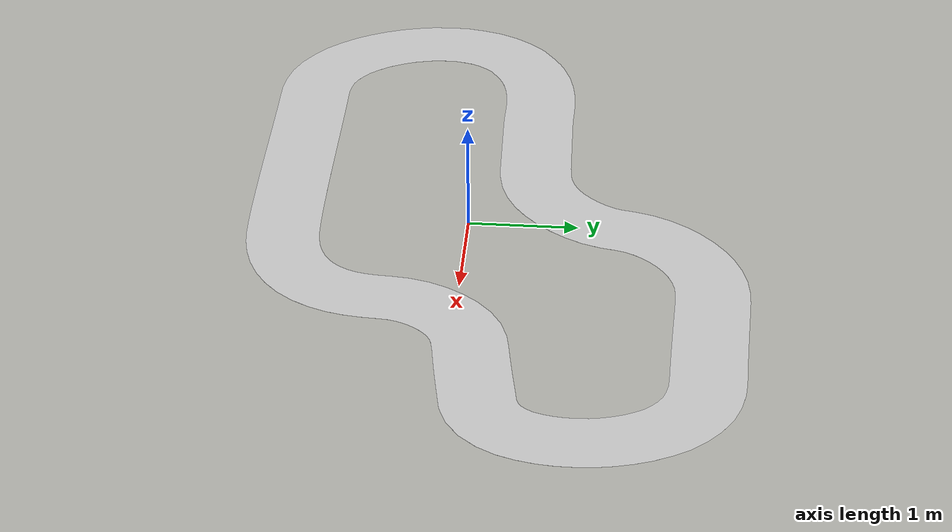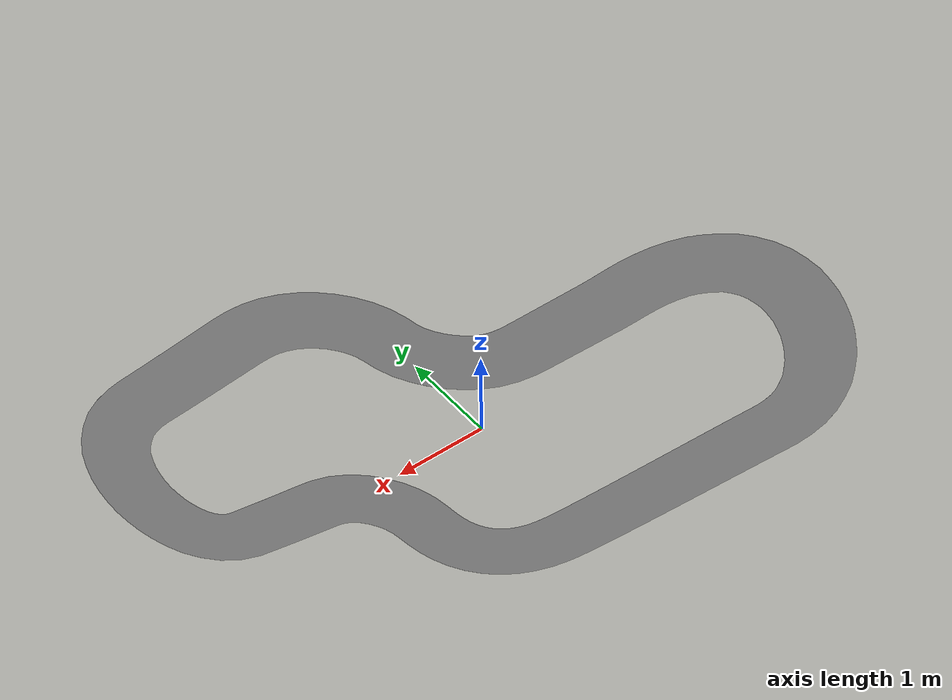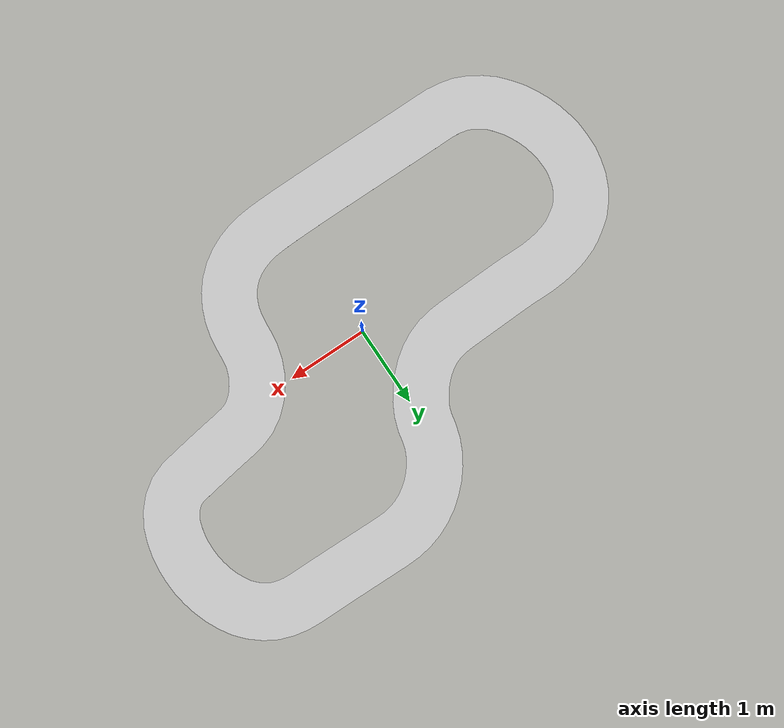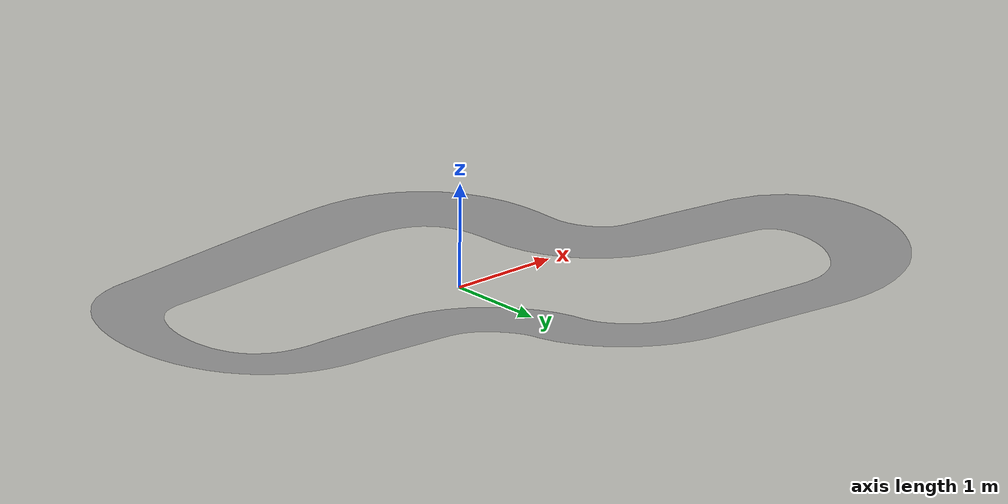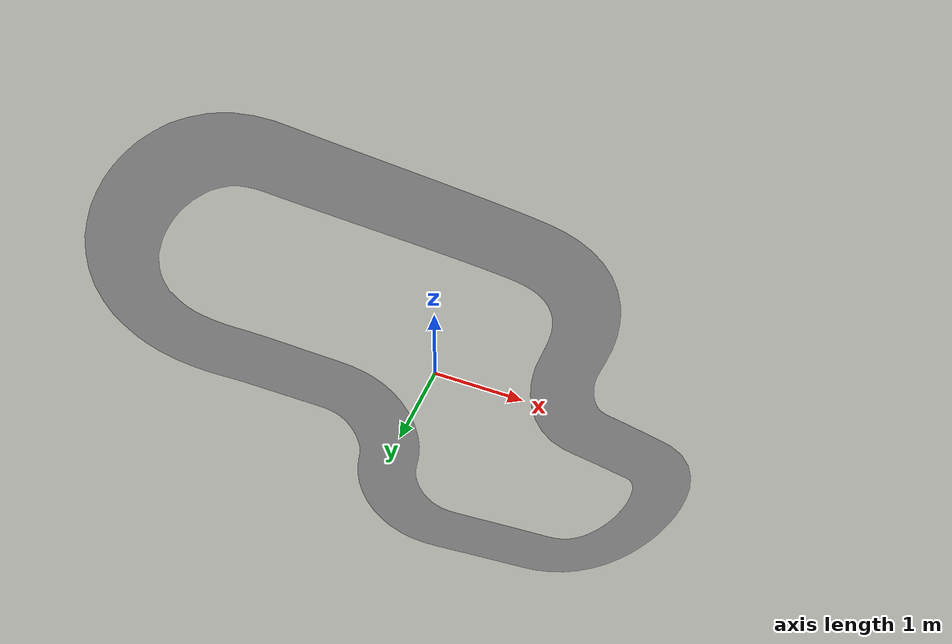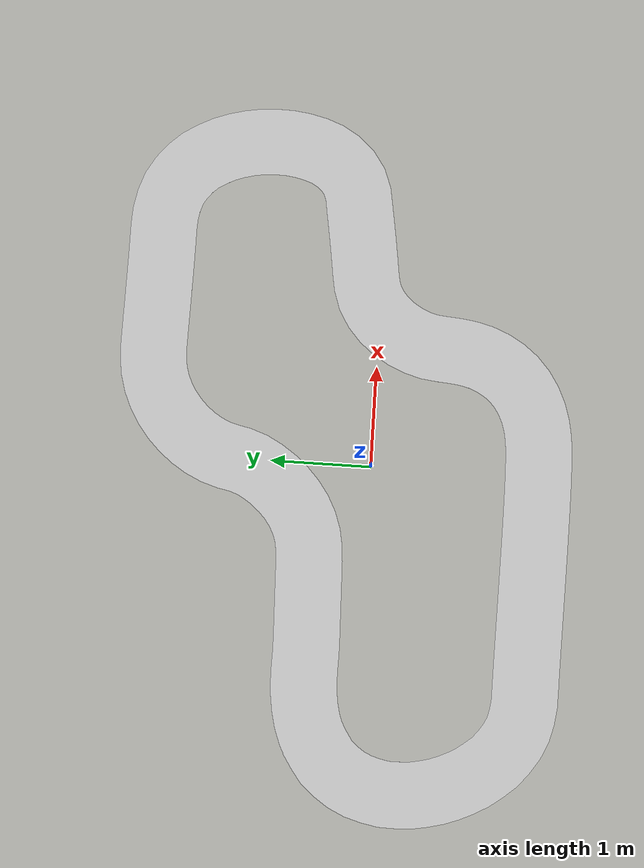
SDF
<?xml version="1.0" ?>
<sdf version="1.5">
  <model name="pista">
    <static>true</static>
    <link name="link">
      <collision name="collision">
        <geometry>
          <mesh>
            <uri>model://pista/meshes/pista.dae</uri>
          </mesh>
        </geometry>
      </collision>
      <visual name="mesh">
        <geometry>
          <mesh>
            <uri>model://pista/meshes/pista.dae</uri>
          </mesh>
        </geometry>
        <material>
          <script>
            <uri>model://pista/materials/scripts</uri>
            <uri>model://pista/materials/textures</uri>
            <name>vrc/pista</name>
          </script>
        </material>
      </visual>
    </link>
  </model>
</sdf>
